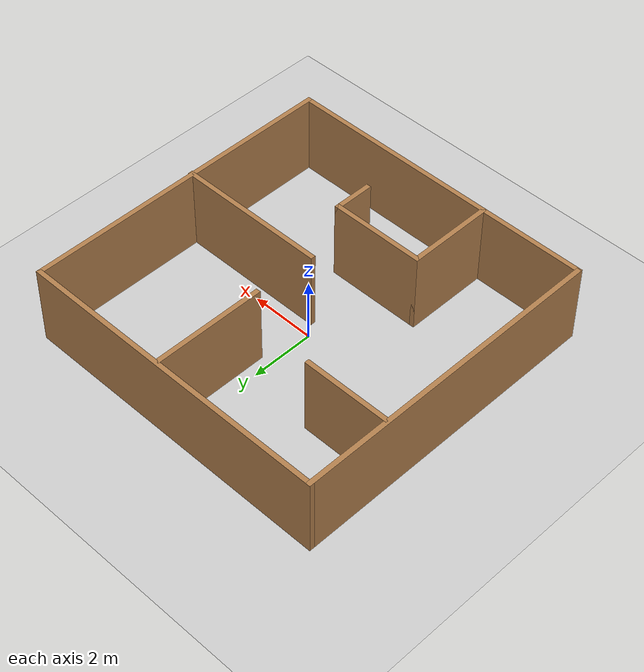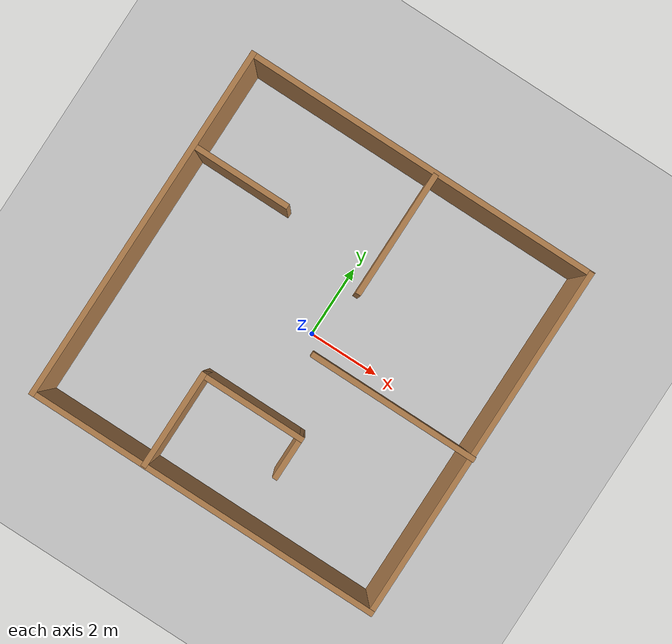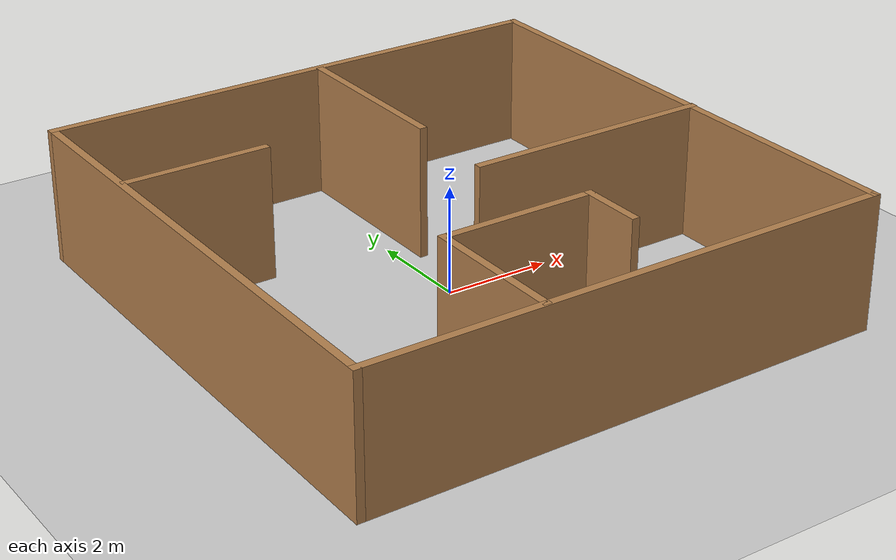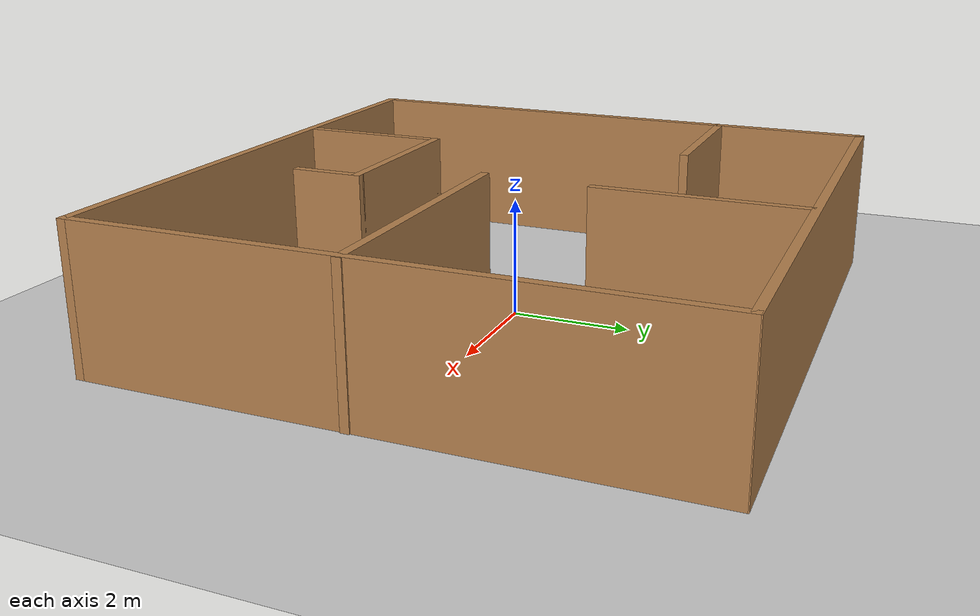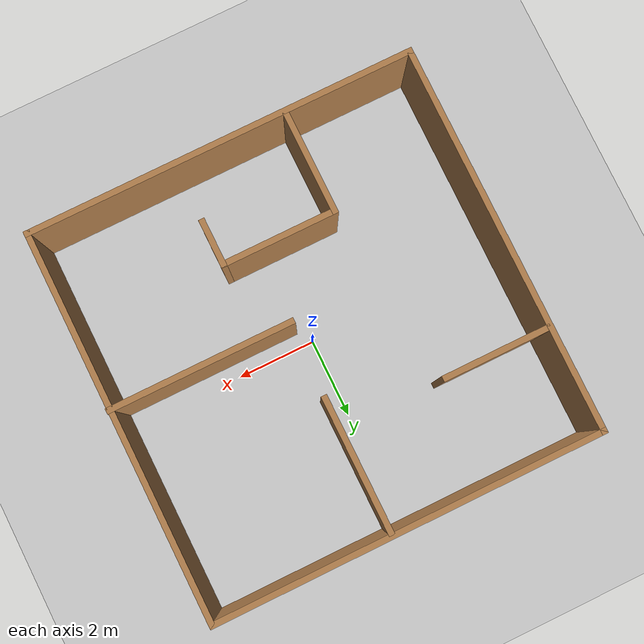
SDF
<sdf version="1.4">
  <world name="default">

    <scene>
      <ambient>0.4 0.4 0.4 1</ambient>
      <background>0.7 0.7 0.7 1</background>
      <shadows>true</shadows>
    </scene>

    <!-- A global light source -->
    <include>
      <uri>model://sun</uri>
    </include>

    <!-- A ground plane -->
    <include>
      <uri>model://ground_plane</uri>
    </include>

    <!-- My maze -->
    <include>
      <uri>model://vacumm_maze3</uri>
	<pose> 0 0 0 0 0 0</pose>
    </include>

    <physics type="ode">
      <real_time_update_rate>1000.0</real_time_update_rate>
      <max_step_size>0.001</max_step_size>
      <real_time_factor>1</real_time_factor>
      <ode>
        <solver>
          <type>quick</type>
          <iters>150</iters>
          <precon_iters>0</precon_iters>
          <sor>1.400000</sor>
          <use_dynamic_moi_rescaling>1</use_dynamic_moi_rescaling>
        </solver>
        <constraints>
          <cfm>0.00001</cfm>
          <erp>0.2</erp>
          <contact_max_correcting_vel>2000.000000</contact_max_correcting_vel>
          <contact_surface_layer>0.01000</contact_surface_layer>
        </constraints>
      </ode>
    </physics>
  </world>

</sdf>

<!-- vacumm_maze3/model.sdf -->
<sdf version='1.7'>
  <model name='vacumm_maze3'>
    <pose>-0.733076 -3.6045 0 0 -0 0</pose>
    <link name='Wall_0'>
      <collision name='Wall_0_Collision'>
        <geometry>
          <box>
            <size>10.0175 0.15 2.5</size>
          </box>
        </geometry>
        <pose>0 0 1.25 0 -0 0</pose>
      </collision>
      <visual name='Wall_0_Visual'>
        <pose>0 0 1.25 0 -0 0</pose>
        <geometry>
          <box>
            <size>10.0175 0.15 2.5</size>
          </box>
        </geometry>
        <material>
          <script>
            <uri>file://media/materials/scripts/gazebo.material</uri>
            <name>Gazebo/Wood</name>
          </script>
          <ambient>1 1 1 1</ambient>
        </material>
        <meta>
          <layer>0</layer>
        </meta>
      </visual>
      <pose>-4.93692 0 0 0 -0 -1.5708</pose>
    </link>
    <link name='Wall_10'>
      <collision name='Wall_10_Collision'>
        <geometry>
          <box>
            <size>3.5 0.15 2.5</size>
          </box>
        </geometry>
        <pose>0 0 1.25 0 -0 0</pose>
      </collision>
      <visual name='Wall_10_Visual'>
        <pose>0 0 1.25 0 -0 0</pose>
        <geometry>
          <box>
            <size>3.5 0.15 2.5</size>
          </box>
        </geometry>
        <material>
          <script>
            <uri>file://media/materials/scripts/gazebo.material</uri>
            <name>Gazebo/Wood</name>
          </script>
          <ambient>1 1 1 1</ambient>
        </material>
        <meta>
          <layer>0</layer>
        </meta>
      </visual>
      <pose>0.416822 3.16649 0 0 -0 1.5708</pose>
    </link>
    <link name='Wall_13'>
      <collision name='Wall_13_Collision'>
        <geometry>
          <box>
            <size>2.75 0.15 2.5</size>
          </box>
        </geometry>
        <pose>0 0 1.25 0 -0 0</pose>
      </collision>
      <visual name='Wall_13_Visual'>
        <pose>0 0 1.25 0 -0 0</pose>
        <geometry>
          <box>
            <size>2.75 0.15 2.5</size>
          </box>
        </geometry>
        <material>
          <script>
            <uri>file://media/materials/scripts/gazebo.material</uri>
            <name>Gazebo/Wood</name>
          </script>
          <ambient>1 1 1 1</ambient>
        </material>
        <meta>
          <layer>0</layer>
        </meta>
      </visual>
      <pose>-1.68524 -3.60372 0 0 -0 1.5708</pose>
    </link>
    <link name='Wall_14'>
      <collision name='Wall_14_Collision'>
        <geometry>
          <box>
            <size>3 0.15 2.5</size>
          </box>
        </geometry>
        <pose>0 0 1.25 0 -0 0</pose>
      </collision>
      <visual name='Wall_14_Visual'>
        <pose>0 0 1.25 0 -0 0</pose>
        <geometry>
          <box>
            <size>3 0.15 2.5</size>
          </box>
        </geometry>
        <material>
          <script>
            <uri>file://media/materials/scripts/gazebo.material</uri>
            <name>Gazebo/Wood</name>
          </script>
          <ambient>1 1 1 1</ambient>
        </material>
        <meta>
          <layer>0</layer>
        </meta>
      </visual>
      <pose>-0.260241 -2.30372 0 0 -0 0</pose>
    </link>
    <link name='Wall_15'>
      <collision name='Wall_15_Collision'>
        <geometry>
          <box>
            <size>1.25 0.15 2.5</size>
          </box>
        </geometry>
        <pose>0 0 1.25 0 -0 0</pose>
      </collision>
      <visual name='Wall_15_Visual'>
        <pose>0 0 1.25 0 -0 0</pose>
        <geometry>
          <box>
            <size>1.25 0.15 2.5</size>
          </box>
        </geometry>
        <material>
          <script>
            <uri>file://media/materials/scripts/gazebo.material</uri>
            <name>Gazebo/Wood</name>
          </script>
          <ambient>1 1 1 1</ambient>
        </material>
        <meta>
          <layer>0</layer>
        </meta>
      </visual>
      <pose>1.16476 -2.85372 0 0 -0 -1.5708</pose>
    </link>
    <link name='Wall_2'>
      <collision name='Wall_2_Collision'>
        <geometry>
          <box>
            <size>10 0.15 2.5</size>
          </box>
        </geometry>
        <pose>0 0 1.25 0 -0 0</pose>
      </collision>
      <visual name='Wall_2_Visual'>
        <pose>0 0 1.25 0 -0 0</pose>
        <geometry>
          <box>
            <size>10 0.15 2.5</size>
          </box>
        </geometry>
        <material>
          <script>
            <uri>file://media/materials/scripts/gazebo.material</uri>
            <name>Gazebo/Wood</name>
          </script>
          <ambient>1 1 1 1</ambient>
        </material>
        <meta>
          <layer>0</layer>
        </meta>
      </visual>
      <pose>-0.011924 -4.93375 0 0 -0 3.14159</pose>
    </link>
    <link name='Wall_20'>
      <collision name='Wall_20_Collision'>
        <geometry>
          <box>
            <size>4.75 0.15 2.5</size>
          </box>
        </geometry>
        <pose>0 0 1.25 0 -0 0</pose>
      </collision>
      <visual name='Wall_20_Visual'>
        <pose>0 0 1.25 0 -0 0</pose>
        <geometry>
          <box>
            <size>4.75 0.15 2.5</size>
          </box>
        </geometry>
        <material>
          <script>
            <uri>file://media/materials/scripts/gazebo.material</uri>
            <name>Gazebo/Wood</name>
          </script>
          <ambient>1 1 1 1</ambient>
        </material>
        <meta>
          <layer>0</layer>
        </meta>
      </visual>
      <pose>2.63693 -0.423647 0 0 -0 3.14159</pose>
    </link>
    <link name='Wall_4'>
      <collision name='Wall_4_Collision'>
        <geometry>
          <box>
            <size>10 0.15 2.5</size>
          </box>
        </geometry>
        <pose>0 0 1.25 0 -0 0</pose>
      </collision>
      <visual name='Wall_4_Visual'>
        <pose>0 0 1.25 0 -0 0</pose>
        <geometry>
          <box>
            <size>10 0.15 2.5</size>
          </box>
        </geometry>
        <material>
          <script>
            <uri>file://media/materials/scripts/gazebo.material</uri>
            <name>Gazebo/Wood</name>
          </script>
          <ambient>1 1 1 1</ambient>
        </material>
        <meta>
          <layer>0</layer>
        </meta>
      </visual>
      <pose>4.91308 -0.008745 0 0 -0 -1.5708</pose>
    </link>
    <link name='Wall_6'>
      <collision name='Wall_6_Collision'>
        <geometry>
          <box>
            <size>10 0.15 2.5</size>
          </box>
        </geometry>
        <pose>0 0 1.25 0 -0 0</pose>
      </collision>
      <visual name='Wall_6_Visual'>
        <pose>0 0 1.25 0 -0 0</pose>
        <geometry>
          <box>
            <size>10 0.15 2.5</size>
          </box>
        </geometry>
        <material>
          <script>
            <uri>file://media/materials/scripts/gazebo.material</uri>
            <name>Gazebo/Wood</name>
          </script>
          <ambient>1 1 1 1</ambient>
        </material>
        <meta>
          <layer>0</layer>
        </meta>
      </visual>
      <pose>-0.011924 4.93375 0 0 -0 3.14159</pose>
    </link>
    <link name='Wall_8'>
      <collision name='Wall_8_Collision'>
        <geometry>
          <box>
            <size>2.75 0.15 2.5</size>
          </box>
        </geometry>
        <pose>0 0 1.25 0 -0 0</pose>
      </collision>
      <visual name='Wall_8_Visual'>
        <pose>0 0 1.25 0 -0 0</pose>
        <geometry>
          <box>
            <size>2.75 0.15 2.5</size>
          </box>
        </geometry>
        <material>
          <script>
            <uri>file://media/materials/scripts/gazebo.material</uri>
            <name>Gazebo/Wood</name>
          </script>
          <ambient>1 1 1 1</ambient>
        </material>
        <meta>
          <layer>0</layer>
        </meta>
      </visual>
      <pose>-3.55916 2.27647 0 0 -0 3.14159</pose>
    </link>
    <static>1</static>
  </model>
</sdf>
